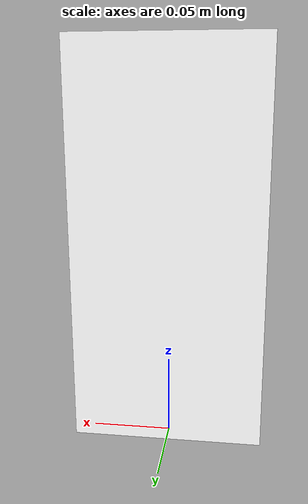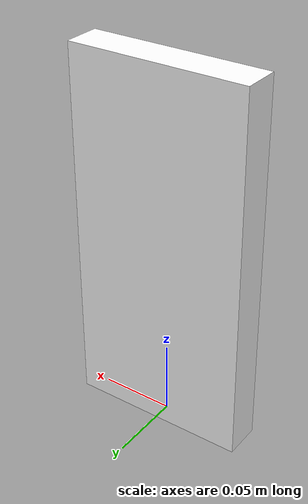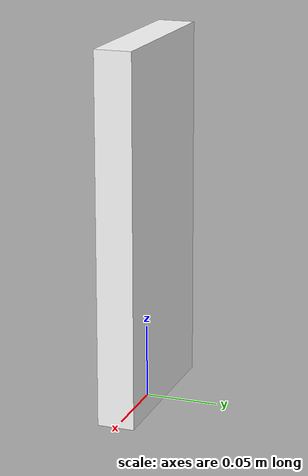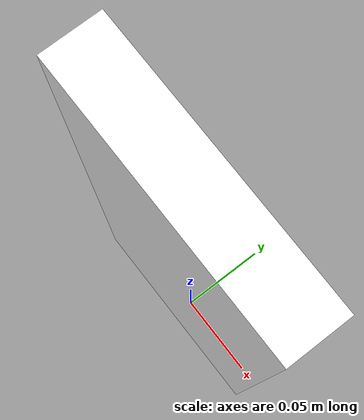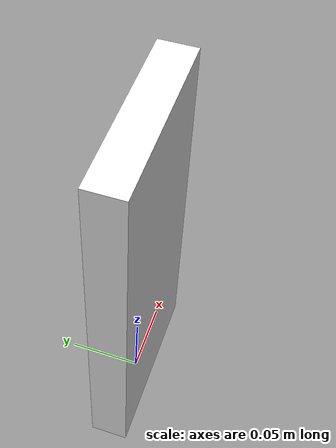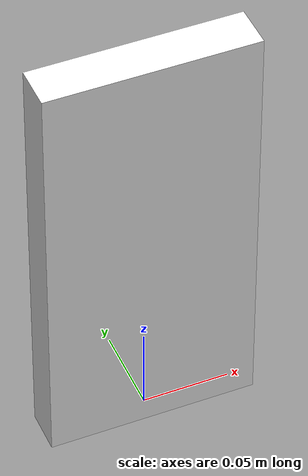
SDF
<?xml version="1.0" ?>
<sdf version="1.10">
  <model name="autorace_sign_tunnel">
    <pose>0 0 0.125 0 0 0</pose>
    <link name="box">
      <pose>0 0 0 0 0 0</pose>
      <collision name="collision">
        <geometry>
          <box>
            <size>0.12 0.025 0.25</size>
          </box>
        </geometry>
      </collision>
      <visual name="visual">
        <geometry>
          <box>
            <size>0.12 0.025 0.25</size>
          </box>
        </geometry>
                <material>
          <diffuse>1 1 1 1</diffuse>
          <specular>0.1 0.1 0.1 1</specular>
          <pbr>
            <metal>
              <albedo_map>model://autorace_sign_tunnel/materials/textures/tunnel.png</albedo_map>
              <metalness>0.0</metalness>
              <roughness>0.9</roughness>
            </metal>
          </pbr>
        </material>
      </visual>
    </link>
      <static>true</static>
  </model>
</sdf>
